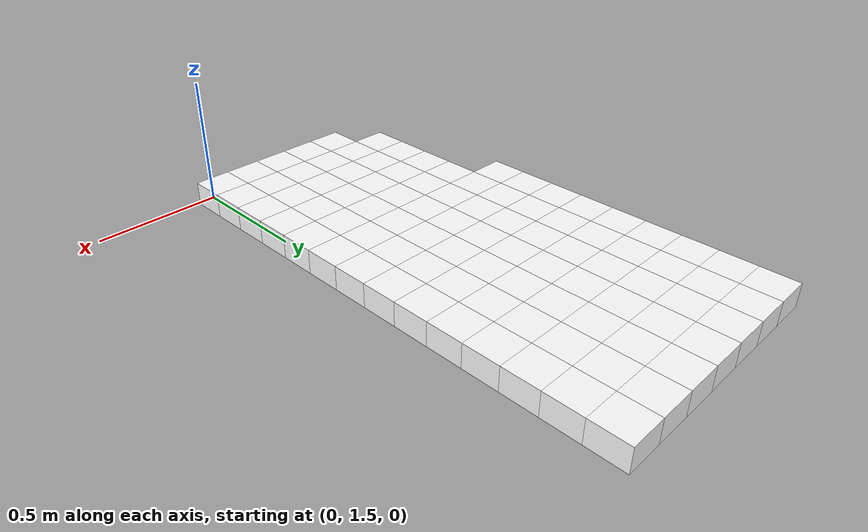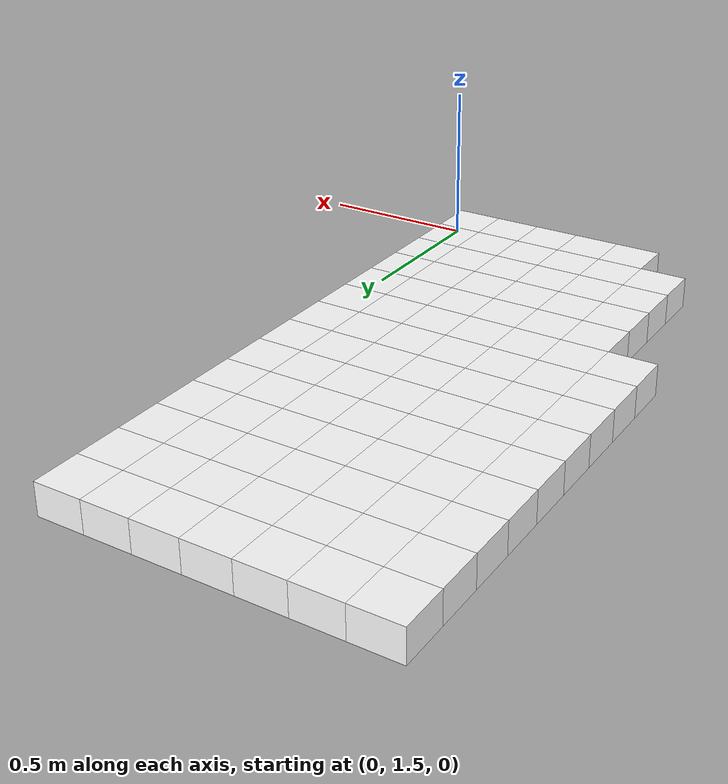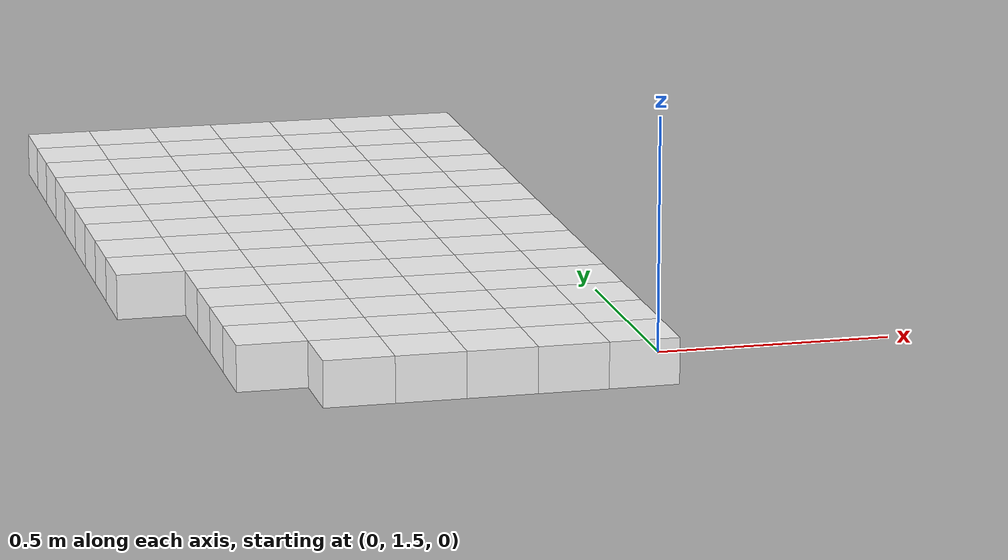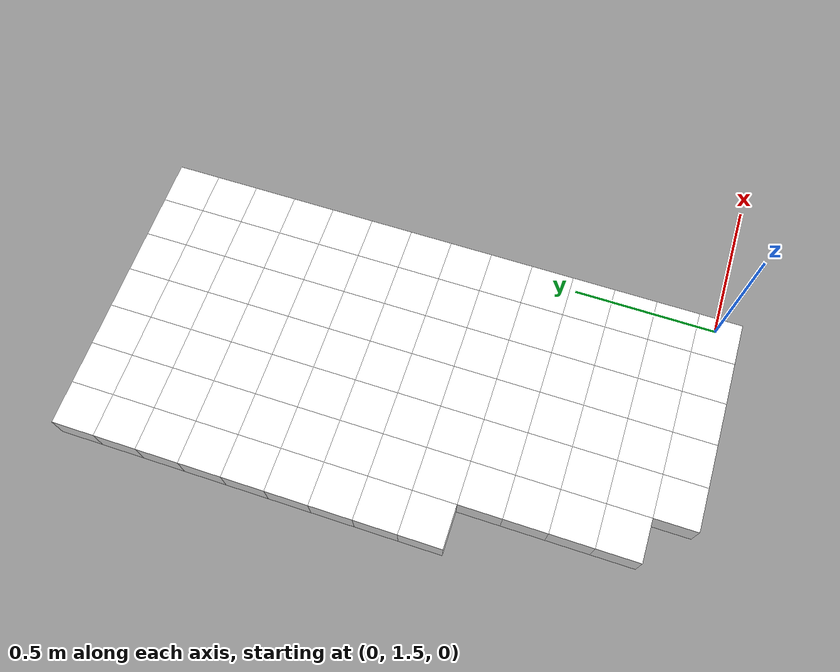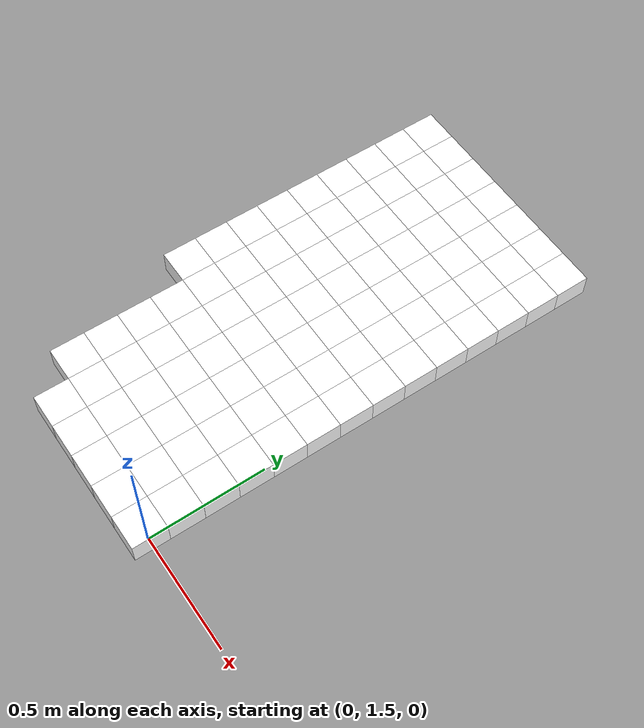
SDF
<sdf version="1.7">
 <world name="default">
  <include><uri>model://sun</uri></include>
  <model name="static_environment">
   <static>true</static>
   <link name="region_129">
    <pose>-0.6500000000000001 1.5 0.0 0.0 0.0 0.0</pose>
    <collision name="region_129_collision">
     <geometry><box><size>0.15 0.15 0.1</size></box></geometry>
     <surface><friction><ode><mu>1.0</mu><mu2>1.0</mu2></ode></friction></surface>
    </collision>
    <visual name="region_129_visual">
     <geometry><box><size>0.15 0.15 0.1</size></box></geometry>
     <material><ambient>1.0 1.0 1.0 1.0</ambient><diffuse>1.0 1.0 1.0 1.0</diffuse></material>
    </visual>
   </link>
   <link name="region_130">
    <pose>-0.5000000000000002 1.5 0.0 0.0 0.0 0.0</pose>
    <collision name="region_130_collision">
     <geometry><box><size>0.15 0.15 0.1</size></box></geometry>
     <surface><friction><ode><mu>1.0</mu><mu2>1.0</mu2></ode></friction></surface>
    </collision>
    <visual name="region_130_visual">
     <geometry><box><size>0.15 0.15 0.1</size></box></geometry>
     <material><ambient>1.0 1.0 1.0 1.0</ambient><diffuse>1.0 1.0 1.0 1.0</diffuse></material>
    </visual>
   </link>
   <link name="region_131">
    <pose>-0.3500000000000003 1.5 0.0 0.0 0.0 0.0</pose>
    <collision name="region_131_collision">
     <geometry><box><size>0.15 0.15 0.1</size></box></geometry>
     <surface><friction><ode><mu>1.0</mu><mu2>1.0</mu2></ode></friction></surface>
    </collision>
    <visual name="region_131_visual">
     <geometry><box><size>0.15 0.15 0.1</size></box></geometry>
     <material><ambient>1.0 1.0 1.0 1.0</ambient><diffuse>1.0 1.0 1.0 1.0</diffuse></material>
    </visual>
   </link>
   <link name="region_132">
    <pose>-0.2000000000000004 1.5 0.0 0.0 0.0 0.0</pose>
    <collision name="region_132_collision">
     <geometry><box><size>0.15 0.15 0.1</size></box></geometry>
     <surface><friction><ode><mu>1.0</mu><mu2>1.0</mu2></ode></friction></surface>
    </collision>
    <visual name="region_132_visual">
     <geometry><box><size>0.15 0.15 0.1</size></box></geometry>
     <material><ambient>1.0 1.0 1.0 1.0</ambient><diffuse>1.0 1.0 1.0 1.0</diffuse></material>
    </visual>
   </link>
   <link name="region_133">
    <pose>-0.05000000000000049 1.5 0.0 0.0 0.0 0.0</pose>
    <collision name="region_133_collision">
     <geometry><box><size>0.15 0.15 0.1</size></box></geometry>
     <surface><friction><ode><mu>1.0</mu><mu2>1.0</mu2></ode></friction></surface>
    </collision>
    <visual name="region_133_visual">
     <geometry><box><size>0.15 0.15 0.1</size></box></geometry>
     <material><ambient>1.0 1.0 1.0 1.0</ambient><diffuse>1.0 1.0 1.0 1.0</diffuse></material>
    </visual>
   </link>
   <link name="region_148">
    <pose>-0.8 1.65 0.0 0.0 0.0 0.0</pose>
    <collision name="region_148_collision">
     <geometry><box><size>0.15 0.15 0.1</size></box></geometry>
     <surface><friction><ode><mu>1.0</mu><mu2>1.0</mu2></ode></friction></surface>
    </collision>
    <visual name="region_148_visual">
     <geometry><box><size>0.15 0.15 0.1</size></box></geometry>
     <material><ambient>1.0 1.0 1.0 1.0</ambient><diffuse>1.0 1.0 1.0 1.0</diffuse></material>
    </visual>
   </link>
   <link name="region_149">
    <pose>-0.6500000000000001 1.65 0.0 0.0 0.0 0.0</pose>
    <collision name="region_149_collision">
     <geometry><box><size>0.15 0.15 0.1</size></box></geometry>
     <surface><friction><ode><mu>1.0</mu><mu2>1.0</mu2></ode></friction></surface>
    </collision>
    <visual name="region_149_visual">
     <geometry><box><size>0.15 0.15 0.1</size></box></geometry>
     <material><ambient>1.0 1.0 1.0 1.0</ambient><diffuse>1.0 1.0 1.0 1.0</diffuse></material>
    </visual>
   </link>
   <link name="region_150">
    <pose>-0.5000000000000002 1.65 0.0 0.0 0.0 0.0</pose>
    <collision name="region_150_collision">
     <geometry><box><size>0.15 0.15 0.1</size></box></geometry>
     <surface><friction><ode><mu>1.0</mu><mu2>1.0</mu2></ode></friction></surface>
    </collision>
    <visual name="region_150_visual">
     <geometry><box><size>0.15 0.15 0.1</size></box></geometry>
     <material><ambient>1.0 1.0 1.0 1.0</ambient><diffuse>1.0 1.0 1.0 1.0</diffuse></material>
    </visual>
   </link>
   <link name="region_151">
    <pose>-0.3500000000000003 1.65 0.0 0.0 0.0 0.0</pose>
    <collision name="region_151_collision">
     <geometry><box><size>0.15 0.15 0.1</size></box></geometry>
     <surface><friction><ode><mu>1.0</mu><mu2>1.0</mu2></ode></friction></surface>
    </collision>
    <visual name="region_151_visual">
     <geometry><box><size>0.15 0.15 0.1</size></box></geometry>
     <material><ambient>1.0 1.0 1.0 1.0</ambient><diffuse>1.0 1.0 1.0 1.0</diffuse></material>
    </visual>
   </link>
   <link name="region_152">
    <pose>-0.2000000000000004 1.65 0.0 0.0 0.0 0.0</pose>
    <collision name="region_152_collision">
     <geometry><box><size>0.15 0.15 0.1</size></box></geometry>
     <surface><friction><ode><mu>1.0</mu><mu2>1.0</mu2></ode></friction></surface>
    </collision>
    <visual name="region_152_visual">
     <geometry><box><size>0.15 0.15 0.1</size></box></geometry>
     <material><ambient>1.0 1.0 1.0 1.0</ambient><diffuse>1.0 1.0 1.0 1.0</diffuse></material>
    </visual>
   </link>
   <link name="region_153">
    <pose>-0.05000000000000049 1.65 0.0 0.0 0.0 0.0</pose>
    <collision name="region_153_collision">
     <geometry><box><size>0.15 0.15 0.1</size></box></geometry>
     <surface><friction><ode><mu>1.0</mu><mu2>1.0</mu2></ode></friction></surface>
    </collision>
    <visual name="region_153_visual">
     <geometry><box><size>0.15 0.15 0.1</size></box></geometry>
     <material><ambient>1.0 1.0 1.0 1.0</ambient><diffuse>1.0 1.0 1.0 1.0</diffuse></material>
    </visual>
   </link>
   <link name="region_168">
    <pose>-0.8 1.7999999999999998 0.0 0.0 0.0 0.0</pose>
    <collision name="region_168_collision">
     <geometry><box><size>0.15 0.15 0.1</size></box></geometry>
     <surface><friction><ode><mu>1.0</mu><mu2>1.0</mu2></ode></friction></surface>
    </collision>
    <visual name="region_168_visual">
     <geometry><box><size>0.15 0.15 0.1</size></box></geometry>
     <material><ambient>1.0 1.0 1.0 1.0</ambient><diffuse>1.0 1.0 1.0 1.0</diffuse></material>
    </visual>
   </link>
   <link name="region_169">
    <pose>-0.6500000000000001 1.7999999999999998 0.0 0.0 0.0 0.0</pose>
    <collision name="region_169_collision">
     <geometry><box><size>0.15 0.15 0.1</size></box></geometry>
     <surface><friction><ode><mu>1.0</mu><mu2>1.0</mu2></ode></friction></surface>
    </collision>
    <visual name="region_169_visual">
     <geometry><box><size>0.15 0.15 0.1</size></box></geometry>
     <material><ambient>1.0 1.0 1.0 1.0</ambient><diffuse>1.0 1.0 1.0 1.0</diffuse></material>
    </visual>
   </link>
   <link name="region_170">
    <pose>-0.5000000000000002 1.7999999999999998 0.0 0.0 0.0 0.0</pose>
    <collision name="region_170_collision">
     <geometry><box><size>0.15 0.15 0.1</size></box></geometry>
     <surface><friction><ode><mu>1.0</mu><mu2>1.0</mu2></ode></friction></surface>
    </collision>
    <visual name="region_170_visual">
     <geometry><box><size>0.15 0.15 0.1</size></box></geometry>
     <material><ambient>1.0 1.0 1.0 1.0</ambient><diffuse>1.0 1.0 1.0 1.0</diffuse></material>
    </visual>
   </link>
   <link name="region_171">
    <pose>-0.3500000000000003 1.7999999999999998 0.0 0.0 0.0 0.0</pose>
    <collision name="region_171_collision">
     <geometry><box><size>0.15 0.15 0.1</size></box></geometry>
     <surface><friction><ode><mu>1.0</mu><mu2>1.0</mu2></ode></friction></surface>
    </collision>
    <visual name="region_171_visual">
     <geometry><box><size>0.15 0.15 0.1</size></box></geometry>
     <material><ambient>1.0 1.0 1.0 1.0</ambient><diffuse>1.0 1.0 1.0 1.0</diffuse></material>
    </visual>
   </link>
   <link name="region_172">
    <pose>-0.2000000000000004 1.7999999999999998 0.0 0.0 0.0 0.0</pose>
    <collision name="region_172_collision">
     <geometry><box><size>0.15 0.15 0.1</size></box></geometry>
     <surface><friction><ode><mu>1.0</mu><mu2>1.0</mu2></ode></friction></surface>
    </collision>
    <visual name="region_172_visual">
     <geometry><box><size>0.15 0.15 0.1</size></box></geometry>
     <material><ambient>1.0 1.0 1.0 1.0</ambient><diffuse>1.0 1.0 1.0 1.0</diffuse></material>
    </visual>
   </link>
   <link name="region_173">
    <pose>-0.05000000000000049 1.7999999999999998 0.0 0.0 0.0 0.0</pose>
    <collision name="region_173_collision">
     <geometry><box><size>0.15 0.15 0.1</size></box></geometry>
     <surface><friction><ode><mu>1.0</mu><mu2>1.0</mu2></ode></friction></surface>
    </collision>
    <visual name="region_173_visual">
     <geometry><box><size>0.15 0.15 0.1</size></box></geometry>
     <material><ambient>1.0 1.0 1.0 1.0</ambient><diffuse>1.0 1.0 1.0 1.0</diffuse></material>
    </visual>
   </link>
   <link name="region_188">
    <pose>-0.8 1.9499999999999997 0.0 0.0 0.0 0.0</pose>
    <collision name="region_188_collision">
     <geometry><box><size>0.15 0.15 0.1</size></box></geometry>
     <surface><friction><ode><mu>1.0</mu><mu2>1.0</mu2></ode></friction></surface>
    </collision>
    <visual name="region_188_visual">
     <geometry><box><size>0.15 0.15 0.1</size></box></geometry>
     <material><ambient>1.0 1.0 1.0 1.0</ambient><diffuse>1.0 1.0 1.0 1.0</diffuse></material>
    </visual>
   </link>
   <link name="region_189">
    <pose>-0.6500000000000001 1.9499999999999997 0.0 0.0 0.0 0.0</pose>
    <collision name="region_189_collision">
     <geometry><box><size>0.15 0.15 0.1</size></box></geometry>
     <surface><friction><ode><mu>1.0</mu><mu2>1.0</mu2></ode></friction></surface>
    </collision>
    <visual name="region_189_visual">
     <geometry><box><size>0.15 0.15 0.1</size></box></geometry>
     <material><ambient>1.0 1.0 1.0 1.0</ambient><diffuse>1.0 1.0 1.0 1.0</diffuse></material>
    </visual>
   </link>
   <link name="region_190">
    <pose>-0.5000000000000002 1.9499999999999997 0.0 0.0 0.0 0.0</pose>
    <collision name="region_190_collision">
     <geometry><box><size>0.15 0.15 0.1</size></box></geometry>
     <surface><friction><ode><mu>1.0</mu><mu2>1.0</mu2></ode></friction></surface>
    </collision>
    <visual name="region_190_visual">
     <geometry><box><size>0.15 0.15 0.1</size></box></geometry>
     <material><ambient>1.0 1.0 1.0 1.0</ambient><diffuse>1.0 1.0 1.0 1.0</diffuse></material>
    </visual>
   </link>
   <link name="region_191">
    <pose>-0.3500000000000003 1.9499999999999997 0.0 0.0 0.0 0.0</pose>
    <collision name="region_191_collision">
     <geometry><box><size>0.15 0.15 0.1</size></box></geometry>
     <surface><friction><ode><mu>1.0</mu><mu2>1.0</mu2></ode></friction></surface>
    </collision>
    <visual name="region_191_visual">
     <geometry><box><size>0.15 0.15 0.1</size></box></geometry>
     <material><ambient>1.0 1.0 1.0 1.0</ambient><diffuse>1.0 1.0 1.0 1.0</diffuse></material>
    </visual>
   </link>
   <link name="region_192">
    <pose>-0.2000000000000004 1.9499999999999997 0.0 0.0 0.0 0.0</pose>
    <collision name="region_192_collision">
     <geometry><box><size>0.15 0.15 0.1</size></box></geometry>
     <surface><friction><ode><mu>1.0</mu><mu2>1.0</mu2></ode></friction></surface>
    </collision>
    <visual name="region_192_visual">
     <geometry><box><size>0.15 0.15 0.1</size></box></geometry>
     <material><ambient>1.0 1.0 1.0 1.0</ambient><diffuse>1.0 1.0 1.0 1.0</diffuse></material>
    </visual>
   </link>
   <link name="region_193">
    <pose>-0.05000000000000049 1.9499999999999997 0.0 0.0 0.0 0.0</pose>
    <collision name="region_193_collision">
     <geometry><box><size>0.15 0.15 0.1</size></box></geometry>
     <surface><friction><ode><mu>1.0</mu><mu2>1.0</mu2></ode></friction></surface>
    </collision>
    <visual name="region_193_visual">
     <geometry><box><size>0.15 0.15 0.1</size></box></geometry>
     <material><ambient>1.0 1.0 1.0 1.0</ambient><diffuse>1.0 1.0 1.0 1.0</diffuse></material>
    </visual>
   </link>
   <link name="region_208">
    <pose>-0.8 2.0999999999999996 0.0 0.0 0.0 0.0</pose>
    <collision name="region_208_collision">
     <geometry><box><size>0.15 0.15 0.1</size></box></geometry>
     <surface><friction><ode><mu>1.0</mu><mu2>1.0</mu2></ode></friction></surface>
    </collision>
    <visual name="region_208_visual">
     <geometry><box><size>0.15 0.15 0.1</size></box></geometry>
     <material><ambient>1.0 1.0 1.0 1.0</ambient><diffuse>1.0 1.0 1.0 1.0</diffuse></material>
    </visual>
   </link>
   <link name="region_209">
    <pose>-0.6500000000000001 2.0999999999999996 0.0 0.0 0.0 0.0</pose>
    <collision name="region_209_collision">
     <geometry><box><size>0.15 0.15 0.1</size></box></geometry>
     <surface><friction><ode><mu>1.0</mu><mu2>1.0</mu2></ode></friction></surface>
    </collision>
    <visual name="region_209_visual">
     <geometry><box><size>0.15 0.15 0.1</size></box></geometry>
     <material><ambient>1.0 1.0 1.0 1.0</ambient><diffuse>1.0 1.0 1.0 1.0</diffuse></material>
    </visual>
   </link>
   <link name="region_210">
    <pose>-0.5000000000000002 2.0999999999999996 0.0 0.0 0.0 0.0</pose>
    <collision name="region_210_collision">
     <geometry><box><size>0.15 0.15 0.1</size></box></geometry>
     <surface><friction><ode><mu>1.0</mu><mu2>1.0</mu2></ode></friction></surface>
    </collision>
    <visual name="region_210_visual">
     <geometry><box><size>0.15 0.15 0.1</size></box></geometry>
     <material><ambient>1.0 1.0 1.0 1.0</ambient><diffuse>1.0 1.0 1.0 1.0</diffuse></material>
    </visual>
   </link>
   <link name="region_211">
    <pose>-0.3500000000000003 2.0999999999999996 0.0 0.0 0.0 0.0</pose>
    <collision name="region_211_collision">
     <geometry><box><size>0.15 0.15 0.1</size></box></geometry>
     <surface><friction><ode><mu>1.0</mu><mu2>1.0</mu2></ode></friction></surface>
    </collision>
    <visual name="region_211_visual">
     <geometry><box><size>0.15 0.15 0.1</size></box></geometry>
     <material><ambient>1.0 1.0 1.0 1.0</ambient><diffuse>1.0 1.0 1.0 1.0</diffuse></material>
    </visual>
   </link>
   <link name="region_212">
    <pose>-0.2000000000000004 2.0999999999999996 0.0 0.0 0.0 0.0</pose>
    <collision name="region_212_collision">
     <geometry><box><size>0.15 0.15 0.1</size></box></geometry>
     <surface><friction><ode><mu>1.0</mu><mu2>1.0</mu2></ode></friction></surface>
    </collision>
    <visual name="region_212_visual">
     <geometry><box><size>0.15 0.15 0.1</size></box></geometry>
     <material><ambient>1.0 1.0 1.0 1.0</ambient><diffuse>1.0 1.0 1.0 1.0</diffuse></material>
    </visual>
   </link>
   <link name="region_213">
    <pose>-0.05000000000000049 2.0999999999999996 0.0 0.0 0.0 0.0</pose>
    <collision name="region_213_collision">
     <geometry><box><size>0.15 0.15 0.1</size></box></geometry>
     <surface><friction><ode><mu>1.0</mu><mu2>1.0</mu2></ode></friction></surface>
    </collision>
    <visual name="region_213_visual">
     <geometry><box><size>0.15 0.15 0.1</size></box></geometry>
     <material><ambient>1.0 1.0 1.0 1.0</ambient><diffuse>1.0 1.0 1.0 1.0</diffuse></material>
    </visual>
   </link>
   <link name="region_227">
    <pose>-0.95 2.2499999999999996 0.0 0.0 0.0 0.0</pose>
    <collision name="region_227_collision">
     <geometry><box><size>0.15 0.15 0.1</size></box></geometry>
     <surface><friction><ode><mu>1.0</mu><mu2>1.0</mu2></ode></friction></surface>
    </collision>
    <visual name="region_227_visual">
     <geometry><box><size>0.15 0.15 0.1</size></box></geometry>
     <material><ambient>1.0 1.0 1.0 1.0</ambient><diffuse>1.0 1.0 1.0 1.0</diffuse></material>
    </visual>
   </link>
   <link name="region_228">
    <pose>-0.8 2.2499999999999996 0.0 0.0 0.0 0.0</pose>
    <collision name="region_228_collision">
     <geometry><box><size>0.15 0.15 0.1</size></box></geometry>
     <surface><friction><ode><mu>1.0</mu><mu2>1.0</mu2></ode></friction></surface>
    </collision>
    <visual name="region_228_visual">
     <geometry><box><size>0.15 0.15 0.1</size></box></geometry>
     <material><ambient>1.0 1.0 1.0 1.0</ambient><diffuse>1.0 1.0 1.0 1.0</diffuse></material>
    </visual>
   </link>
   <link name="region_229">
    <pose>-0.6500000000000001 2.2499999999999996 0.0 0.0 0.0 0.0</pose>
    <collision name="region_229_collision">
     <geometry><box><size>0.15 0.15 0.1</size></box></geometry>
     <surface><friction><ode><mu>1.0</mu><mu2>1.0</mu2></ode></friction></surface>
    </collision>
    <visual name="region_229_visual">
     <geometry><box><size>0.15 0.15 0.1</size></box></geometry>
     <material><ambient>1.0 1.0 1.0 1.0</ambient><diffuse>1.0 1.0 1.0 1.0</diffuse></material>
    </visual>
   </link>
   <link name="region_230">
    <pose>-0.5000000000000002 2.2499999999999996 0.0 0.0 0.0 0.0</pose>
    <collision name="region_230_collision">
     <geometry><box><size>0.15 0.15 0.1</size></box></geometry>
     <surface><friction><ode><mu>1.0</mu><mu2>1.0</mu2></ode></friction></surface>
    </collision>
    <visual name="region_230_visual">
     <geometry><box><size>0.15 0.15 0.1</size></box></geometry>
     <material><ambient>1.0 1.0 1.0 1.0</ambient><diffuse>1.0 1.0 1.0 1.0</diffuse></material>
    </visual>
   </link>
   <link name="region_231">
    <pose>-0.3500000000000003 2.2499999999999996 0.0 0.0 0.0 0.0</pose>
    <collision name="region_231_collision">
     <geometry><box><size>0.15 0.15 0.1</size></box></geometry>
     <surface><friction><ode><mu>1.0</mu><mu2>1.0</mu2></ode></friction></surface>
    </collision>
    <visual name="region_231_visual">
     <geometry><box><size>0.15 0.15 0.1</size></box></geometry>
     <material><ambient>1.0 1.0 1.0 1.0</ambient><diffuse>1.0 1.0 1.0 1.0</diffuse></material>
    </visual>
   </link>
   <link name="region_232">
    <pose>-0.2000000000000004 2.2499999999999996 0.0 0.0 0.0 0.0</pose>
    <collision name="region_232_collision">
     <geometry><box><size>0.15 0.15 0.1</size></box></geometry>
     <surface><friction><ode><mu>1.0</mu><mu2>1.0</mu2></ode></friction></surface>
    </collision>
    <visual name="region_232_visual">
     <geometry><box><size>0.15 0.15 0.1</size></box></geometry>
     <material><ambient>1.0 1.0 1.0 1.0</ambient><diffuse>1.0 1.0 1.0 1.0</diffuse></material>
    </visual>
   </link>
   <link name="region_233">
    <pose>-0.05000000000000049 2.2499999999999996 0.0 0.0 0.0 0.0</pose>
    <collision name="region_233_collision">
     <geometry><box><size>0.15 0.15 0.1</size></box></geometry>
     <surface><friction><ode><mu>1.0</mu><mu2>1.0</mu2></ode></friction></surface>
    </collision>
    <visual name="region_233_visual">
     <geometry><box><size>0.15 0.15 0.1</size></box></geometry>
     <material><ambient>1.0 1.0 1.0 1.0</ambient><diffuse>1.0 1.0 1.0 1.0</diffuse></material>
    </visual>
   </link>
   <link name="region_247">
    <pose>-0.95 2.3999999999999995 0.0 0.0 0.0 0.0</pose>
    <collision name="region_247_collision">
     <geometry><box><size>0.15 0.15 0.1</size></box></geometry>
     <surface><friction><ode><mu>1.0</mu><mu2>1.0</mu2></ode></friction></surface>
    </collision>
    <visual name="region_247_visual">
     <geometry><box><size>0.15 0.15 0.1</size></box></geometry>
     <material><ambient>1.0 1.0 1.0 1.0</ambient><diffuse>1.0 1.0 1.0 1.0</diffuse></material>
    </visual>
   </link>
   <link name="region_248">
    <pose>-0.8 2.3999999999999995 0.0 0.0 0.0 0.0</pose>
    <collision name="region_248_collision">
     <geometry><box><size>0.15 0.15 0.1</size></box></geometry>
     <surface><friction><ode><mu>1.0</mu><mu2>1.0</mu2></ode></friction></surface>
    </collision>
    <visual name="region_248_visual">
     <geometry><box><size>0.15 0.15 0.1</size></box></geometry>
     <material><ambient>1.0 1.0 1.0 1.0</ambient><diffuse>1.0 1.0 1.0 1.0</diffuse></material>
    </visual>
   </link>
   <link name="region_249">
    <pose>-0.6500000000000001 2.3999999999999995 0.0 0.0 0.0 0.0</pose>
    <collision name="region_249_collision">
     <geometry><box><size>0.15 0.15 0.1</size></box></geometry>
     <surface><friction><ode><mu>1.0</mu><mu2>1.0</mu2></ode></friction></surface>
    </collision>
    <visual name="region_249_visual">
     <geometry><box><size>0.15 0.15 0.1</size></box></geometry>
     <material><ambient>1.0 1.0 1.0 1.0</ambient><diffuse>1.0 1.0 1.0 1.0</diffuse></material>
    </visual>
   </link>
   <link name="region_250">
    <pose>-0.5000000000000002 2.3999999999999995 0.0 0.0 0.0 0.0</pose>
    <collision name="region_250_collision">
     <geometry><box><size>0.15 0.15 0.1</size></box></geometry>
     <surface><friction><ode><mu>1.0</mu><mu2>1.0</mu2></ode></friction></surface>
    </collision>
    <visual name="region_250_visual">
     <geometry><box><size>0.15 0.15 0.1</size></box></geometry>
     <material><ambient>1.0 1.0 1.0 1.0</ambient><diffuse>1.0 1.0 1.0 1.0</diffuse></material>
    </visual>
   </link>
   <link name="region_251">
    <pose>-0.3500000000000003 2.3999999999999995 0.0 0.0 0.0 0.0</pose>
    <collision name="region_251_collision">
     <geometry><box><size>0.15 0.15 0.1</size></box></geometry>
     <surface><friction><ode><mu>1.0</mu><mu2>1.0</mu2></ode></friction></surface>
    </collision>
    <visual name="region_251_visual">
     <geometry><box><size>0.15 0.15 0.1</size></box></geometry>
     <material><ambient>1.0 1.0 1.0 1.0</ambient><diffuse>1.0 1.0 1.0 1.0</diffuse></material>
    </visual>
   </link>
   <link name="region_252">
    <pose>-0.2000000000000004 2.3999999999999995 0.0 0.0 0.0 0.0</pose>
    <collision name="region_252_collision">
     <geometry><box><size>0.15 0.15 0.1</size></box></geometry>
     <surface><friction><ode><mu>1.0</mu><mu2>1.0</mu2></ode></friction></surface>
    </collision>
    <visual name="region_252_visual">
     <geometry><box><size>0.15 0.15 0.1</size></box></geometry>
     <material><ambient>1.0 1.0 1.0 1.0</ambient><diffuse>1.0 1.0 1.0 1.0</diffuse></material>
    </visual>
   </link>
   <link name="region_253">
    <pose>-0.05000000000000049 2.3999999999999995 0.0 0.0 0.0 0.0</pose>
    <collision name="region_253_collision">
     <geometry><box><size>0.15 0.15 0.1</size></box></geometry>
     <surface><friction><ode><mu>1.0</mu><mu2>1.0</mu2></ode></friction></surface>
    </collision>
    <visual name="region_253_visual">
     <geometry><box><size>0.15 0.15 0.1</size></box></geometry>
     <material><ambient>1.0 1.0 1.0 1.0</ambient><diffuse>1.0 1.0 1.0 1.0</diffuse></material>
    </visual>
   </link>
   <link name="region_267">
    <pose>-0.95 2.5499999999999994 0.0 0.0 0.0 0.0</pose>
    <collision name="region_267_collision">
     <geometry><box><size>0.15 0.15 0.1</size></box></geometry>
     <surface><friction><ode><mu>1.0</mu><mu2>1.0</mu2></ode></friction></surface>
    </collision>
    <visual name="region_267_visual">
     <geometry><box><size>0.15 0.15 0.1</size></box></geometry>
     <material><ambient>1.0 1.0 1.0 1.0</ambient><diffuse>1.0 1.0 1.0 1.0</diffuse></material>
    </visual>
   </link>
   <link name="region_268">
    <pose>-0.8 2.5499999999999994 0.0 0.0 0.0 0.0</pose>
    <collision name="region_268_collision">
     <geometry><box><size>0.15 0.15 0.1</size></box></geometry>
     <surface><friction><ode><mu>1.0</mu><mu2>1.0</mu2></ode></friction></surface>
    </collision>
    <visual name="region_268_visual">
     <geometry><box><size>0.15 0.15 0.1</size></box></geometry>
     <material><ambient>1.0 1.0 1.0 1.0</ambient><diffuse>1.0 1.0 1.0 1.0</diffuse></material>
    </visual>
   </link>
   <link name="region_269">
    <pose>-0.6500000000000001 2.5499999999999994 0.0 0.0 0.0 0.0</pose>
    <collision name="region_269_collision">
     <geometry><box><size>0.15 0.15 0.1</size></box></geometry>
     <surface><friction><ode><mu>1.0</mu><mu2>1.0</mu2></ode></friction></surface>
    </collision>
    <visual name="region_269_visual">
     <geometry><box><size>0.15 0.15 0.1</size></box></geometry>
     <material><ambient>1.0 1.0 1.0 1.0</ambient><diffuse>1.0 1.0 1.0 1.0</diffuse></material>
    </visual>
   </link>
   <link name="region_270">
    <pose>-0.5000000000000002 2.5499999999999994 0.0 0.0 0.0 0.0</pose>
    <collision name="region_270_collision">
     <geometry><box><size>0.15 0.15 0.1</size></box></geometry>
     <surface><friction><ode><mu>1.0</mu><mu2>1.0</mu2></ode></friction></surface>
    </collision>
    <visual name="region_270_visual">
     <geometry><box><size>0.15 0.15 0.1</size></box></geometry>
     <material><ambient>1.0 1.0 1.0 1.0</ambient><diffuse>1.0 1.0 1.0 1.0</diffuse></material>
    </visual>
   </link>
   <link name="region_271">
    <pose>-0.3500000000000003 2.5499999999999994 0.0 0.0 0.0 0.0</pose>
    <collision name="region_271_collision">
     <geometry><box><size>0.15 0.15 0.1</size></box></geometry>
     <surface><friction><ode><mu>1.0</mu><mu2>1.0</mu2></ode></friction></surface>
    </collision>
    <visual name="region_271_visual">
     <geometry><box><size>0.15 0.15 0.1</size></box></geometry>
     <material><ambient>1.0 1.0 1.0 1.0</ambient><diffuse>1.0 1.0 1.0 1.0</diffuse></material>
    </visual>
   </link>
   <link name="region_272">
    <pose>-0.2000000000000004 2.5499999999999994 0.0 0.0 0.0 0.0</pose>
    <collision name="region_272_collision">
     <geometry><box><size>0.15 0.15 0.1</size></box></geometry>
     <surface><friction><ode><mu>1.0</mu><mu2>1.0</mu2></ode></friction></surface>
    </collision>
    <visual name="region_272_visual">
     <geometry><box><size>0.15 0.15 0.1</size></box></geometry>
     <material><ambient>1.0 1.0 1.0 1.0</ambient><diffuse>1.0 1.0 1.0 1.0</diffuse></material>
    </visual>
   </link>
   <link name="region_273">
    <pose>-0.05000000000000049 2.5499999999999994 0.0 0.0 0.0 0.0</pose>
    <collision name="region_273_collision">
     <geometry><box><size>0.15 0.15 0.1</size></box></geometry>
     <surface><friction><ode><mu>1.0</mu><mu2>1.0</mu2></ode></friction></surface>
    </collision>
    <visual name="region_273_visual">
     <geometry><box><size>0.15 0.15 0.1</size></box></geometry>
     <material><ambient>1.0 1.0 1.0 1.0</ambient><diffuse>1.0 1.0 1.0 1.0</diffuse></material>
    </visual>
   </link>
   <link name="region_287">
    <pose>-0.95 2.6999999999999997 0.0 0.0 0.0 0.0</pose>
    <collision name="region_287_collision">
     <geometry><box><size>0.15 0.15 0.1</size></box></geometry>
     <surface><friction><ode><mu>1.0</mu><mu2>1.0</mu2></ode></friction></surface>
    </collision>
    <visual name="region_287_visual">
     <geometry><box><size>0.15 0.15 0.1</size></box></geometry>
     <material><ambient>1.0 1.0 1.0 1.0</ambient><diffuse>1.0 1.0 1.0 1.0</diffuse></material>
    </visual>
   </link>
   <link name="region_288">
    <pose>-0.8 2.6999999999999997 0.0 0.0 0.0 0.0</pose>
    <collision name="region_288_collision">
     <geometry><box><size>0.15 0.15 0.1</size></box></geometry>
     <surface><friction><ode><mu>1.0</mu><mu2>1.0</mu2></ode></friction></surface>
    </collision>
    <visual name="region_288_visual">
     <geometry><box><size>0.15 0.15 0.1</size></box></geometry>
     <material><ambient>1.0 1.0 1.0 1.0</ambient><diffuse>1.0 1.0 1.0 1.0</diffuse></material>
    </visual>
   </link>
   <link name="region_289">
    <pose>-0.6500000000000001 2.6999999999999997 0.0 0.0 0.0 0.0</pose>
    <collision name="region_289_collision">
     <geometry><box><size>0.15 0.15 0.1</size></box></geometry>
     <surface><friction><ode><mu>1.0</mu><mu2>1.0</mu2></ode></friction></surface>
    </collision>
    <visual name="region_289_visual">
     <geometry><box><size>0.15 0.15 0.1</size></box></geometry>
     <material><ambient>1.0 1.0 1.0 1.0</ambient><diffuse>1.0 1.0 1.0 1.0</diffuse></material>
    </visual>
   </link>
   <link name="region_290">
    <pose>-0.5000000000000002 2.6999999999999997 0.0 0.0 0.0 0.0</pose>
    <collision name="region_290_collision">
     <geometry><box><size>0.15 0.15 0.1</size></box></geometry>
     <surface><friction><ode><mu>1.0</mu><mu2>1.0</mu2></ode></friction></surface>
    </collision>
    <visual name="region_290_visual">
     <geometry><box><size>0.15 0.15 0.1</size></box></geometry>
     <material><ambient>1.0 1.0 1.0 1.0</ambient><diffuse>1.0 1.0 1.0 1.0</diffuse></material>
    </visual>
   </link>
   <link name="region_291">
    <pose>-0.3500000000000003 2.6999999999999997 0.0 0.0 0.0 0.0</pose>
    <collision name="region_291_collision">
     <geometry><box><size>0.15 0.15 0.1</size></box></geometry>
     <surface><friction><ode><mu>1.0</mu><mu2>1.0</mu2></ode></friction></surface>
    </collision>
    <visual name="region_291_visual">
     <geometry><box><size>0.15 0.15 0.1</size></box></geometry>
     <material><ambient>1.0 1.0 1.0 1.0</ambient><diffuse>1.0 1.0 1.0 1.0</diffuse></material>
    </visual>
   </link>
   <link name="region_292">
    <pose>-0.2000000000000004 2.6999999999999997 0.0 0.0 0.0 0.0</pose>
    <collision name="region_292_collision">
     <geometry><box><size>0.15 0.15 0.1</size></box></geometry>
     <surface><friction><ode><mu>1.0</mu><mu2>1.0</mu2></ode></friction></surface>
    </collision>
    <visual name="region_292_visual">
     <geometry><box><size>0.15 0.15 0.1</size></box></geometry>
     <material><ambient>1.0 1.0 1.0 1.0</ambient><diffuse>1.0 1.0 1.0 1.0</diffuse></material>
    </visual>
   </link>
   <link name="region_293">
    <pose>-0.05000000000000049 2.6999999999999997 0.0 0.0 0.0 0.0</pose>
    <collision name="region_293_collision">
     <geometry><box><size>0.15 0.15 0.1</size></box></geometry>
     <surface><friction><ode><mu>1.0</mu><mu2>1.0</mu2></ode></friction></surface>
    </collision>
    <visual name="region_293_visual">
     <geometry><box><size>0.15 0.15 0.1</size></box></geometry>
     <material><ambient>1.0 1.0 1.0 1.0</ambient><diffuse>1.0 1.0 1.0 1.0</diffuse></material>
    </visual>
   </link>
   <link name="region_307">
    <pose>-0.95 2.8499999999999996 0.0 0.0 0.0 0.0</pose>
    <collision name="region_307_collision">
     <geometry><box><size>0.15 0.15 0.1</size></box></geometry>
     <surface><friction><ode><mu>1.0</mu><mu2>1.0</mu2></ode></friction></surface>
    </collision>
    <visual name="region_307_visual">
     <geometry><box><size>0.15 0.15 0.1</size></box></geometry>
     <material><ambient>1.0 1.0 1.0 1.0</ambient><diffuse>1.0 1.0 1.0 1.0</diffuse></material>
    </visual>
   </link>
   <link name="region_308">
    <pose>-0.8 2.8499999999999996 0.0 0.0 0.0 0.0</pose>
    <collision name="region_308_collision">
     <geometry><box><size>0.15 0.15 0.1</size></box></geometry>
     <surface><friction><ode><mu>1.0</mu><mu2>1.0</mu2></ode></friction></surface>
    </collision>
    <visual name="region_308_visual">
     <geometry><box><size>0.15 0.15 0.1</size></box></geometry>
     <material><ambient>1.0 1.0 1.0 1.0</ambient><diffuse>1.0 1.0 1.0 1.0</diffuse></material>
    </visual>
   </link>
   <link name="region_309">
    <pose>-0.6500000000000001 2.8499999999999996 0.0 0.0 0.0 0.0</pose>
    <collision name="region_309_collision">
     <geometry><box><size>0.15 0.15 0.1</size></box></geometry>
     <surface><friction><ode><mu>1.0</mu><mu2>1.0</mu2></ode></friction></surface>
    </collision>
    <visual name="region_309_visual">
     <geometry><box><size>0.15 0.15 0.1</size></box></geometry>
     <material><ambient>1.0 1.0 1.0 1.0</ambient><diffuse>1.0 1.0 1.0 1.0</diffuse></material>
    </visual>
   </link>
   <link name="region_310">
    <pose>-0.5000000000000002 2.8499999999999996 0.0 0.0 0.0 0.0</pose>
    <collision name="region_310_collision">
     <geometry><box><size>0.15 0.15 0.1</size></box></geometry>
     <surface><friction><ode><mu>1.0</mu><mu2>1.0</mu2></ode></friction></surface>
    </collision>
    <visual name="region_310_visual">
     <geometry><box><size>0.15 0.15 0.1</size></box></geometry>
     <material><ambient>1.0 1.0 1.0 1.0</ambient><diffuse>1.0 1.0 1.0 1.0</diffuse></material>
    </visual>
   </link>
   <link name="region_311">
    <pose>-0.3500000000000003 2.8499999999999996 0.0 0.0 0.0 0.0</pose>
    <collision name="region_311_collision">
     <geometry><box><size>0.15 0.15 0.1</size></box></geometry>
     <surface><friction><ode><mu>1.0</mu><mu2>1.0</mu2></ode></friction></surface>
    </collision>
    <visual name="region_311_visual">
     <geometry><box><size>0.15 0.15 0.1</size></box></geometry>
     <material><ambient>1.0 1.0 1.0 1.0</ambient><diffuse>1.0 1.0 1.0 1.0</diffuse></material>
    </visual>
   </link>
   <link name="region_312">
    <pose>-0.2000000000000004 2.8499999999999996 0.0 0.0 0.0 0.0</pose>
    <collision name="region_312_collision">
     <geometry><box><size>0.15 0.15 0.1</size></box></geometry>
     <surface><friction><ode><mu>1.0</mu><mu2>1.0</mu2></ode></friction></surface>
    </collision>
    <visual name="region_312_visual">
     <geometry><box><size>0.15 0.15 0.1</size></box></geometry>
     <material><ambient>1.0 1.0 1.0 1.0</ambient><diffuse>1.0 1.0 1.0 1.0</diffuse></material>
    </visual>
   </link>
   <link name="region_313">
    <pose>-0.05000000000000049 2.8499999999999996 0.0 0.0 0.0 0.0</pose>
    <collision name="region_313_collision">
     <geometry><box><size>0.15 0.15 0.1</size></box></geometry>
     <surface><friction><ode><mu>1.0</mu><mu2>1.0</mu2></ode></friction></surface>
    </collision>
    <visual name="region_313_visual">
     <geometry><box><size>0.15 0.15 0.1</size></box></geometry>
     <material><ambient>1.0 1.0 1.0 1.0</ambient><diffuse>1.0 1.0 1.0 1.0</diffuse></material>
    </visual>
   </link>
   <link name="region_327">
    <pose>-0.95 2.9999999999999996 0.0 0.0 0.0 0.0</pose>
    <collision name="region_327_collision">
     <geometry><box><size>0.15 0.15 0.1</size></box></geometry>
     <surface><friction><ode><mu>1.0</mu><mu2>1.0</mu2></ode></friction></surface>
    </collision>
    <visual name="region_327_visual">
     <geometry><box><size>0.15 0.15 0.1</size></box></geometry>
     <material><ambient>1.0 1.0 1.0 1.0</ambient><diffuse>1.0 1.0 1.0 1.0</diffuse></material>
    </visual>
   </link>
   <link name="region_328">
    <pose>-0.8 2.9999999999999996 0.0 0.0 0.0 0.0</pose>
    <collision name="region_328_collision">
     <geometry><box><size>0.15 0.15 0.1</size></box></geometry>
     <surface><friction><ode><mu>1.0</mu><mu2>1.0</mu2></ode></friction></surface>
    </collision>
    <visual name="region_328_visual">
     <geometry><box><size>0.15 0.15 0.1</size></box></geometry>
     <material><ambient>1.0 1.0 1.0 1.0</ambient><diffuse>1.0 1.0 1.0 1.0</diffuse></material>
    </visual>
   </link>
   <link name="region_329">
    <pose>-0.6500000000000001 2.9999999999999996 0.0 0.0 0.0 0.0</pose>
    <collision name="region_329_collision">
     <geometry><box><size>0.15 0.15 0.1</size></box></geometry>
     <surface><friction><ode><mu>1.0</mu><mu2>1.0</mu2></ode></friction></surface>
    </collision>
    <visual name="region_329_visual">
     <geometry><box><size>0.15 0.15 0.1</size></box></geometry>
     <material><ambient>1.0 1.0 1.0 1.0</ambient><diffuse>1.0 1.0 1.0 1.0</diffuse></material>
    </visual>
   </link>
   <link name="region_330">
    <pose>-0.5000000000000002 2.9999999999999996 0.0 0.0 0.0 0.0</pose>
    <collision name="region_330_collision">
     <geometry><box><size>0.15 0.15 0.1</size></box></geometry>
     <surface><friction><ode><mu>1.0</mu><mu2>1.0</mu2></ode></friction></surface>
    </collision>
    <visual name="region_330_visual">
     <geometry><box><size>0.15 0.15 0.1</size></box></geometry>
     <material><ambient>1.0 1.0 1.0 1.0</ambient><diffuse>1.0 1.0 1.0 1.0</diffuse></material>
    </visual>
   </link>
   <link name="region_331">
    <pose>-0.3500000000000003 2.9999999999999996 0.0 0.0 0.0 0.0</pose>
    <collision name="region_331_collision">
     <geometry><box><size>0.15 0.15 0.1</size></box></geometry>
     <surface><friction><ode><mu>1.0</mu><mu2>1.0</mu2></ode></friction></surface>
    </collision>
    <visual name="region_331_visual">
     <geometry><box><size>0.15 0.15 0.1</size></box></geometry>
     <material><ambient>1.0 1.0 1.0 1.0</ambient><diffuse>1.0 1.0 1.0 1.0</diffuse></material>
    </visual>
   </link>
   <link name="region_332">
    <pose>-0.2000000000000004 2.9999999999999996 0.0 0.0 0.0 0.0</pose>
    <collision name="region_332_collision">
     <geometry><box><size>0.15 0.15 0.1</size></box></geometry>
     <surface><friction><ode><mu>1.0</mu><mu2>1.0</mu2></ode></friction></surface>
    </collision>
    <visual name="region_332_visual">
     <geometry><box><size>0.15 0.15 0.1</size></box></geometry>
     <material><ambient>1.0 1.0 1.0 1.0</ambient><diffuse>1.0 1.0 1.0 1.0</diffuse></material>
    </visual>
   </link>
   <link name="region_333">
    <pose>-0.05000000000000049 2.9999999999999996 0.0 0.0 0.0 0.0</pose>
    <collision name="region_333_collision">
     <geometry><box><size>0.15 0.15 0.1</size></box></geometry>
     <surface><friction><ode><mu>1.0</mu><mu2>1.0</mu2></ode></friction></surface>
    </collision>
    <visual name="region_333_visual">
     <geometry><box><size>0.15 0.15 0.1</size></box></geometry>
     <material><ambient>1.0 1.0 1.0 1.0</ambient><diffuse>1.0 1.0 1.0 1.0</diffuse></material>
    </visual>
   </link>
   <link name="region_347">
    <pose>-0.95 3.1499999999999995 0.0 0.0 0.0 0.0</pose>
    <collision name="region_347_collision">
     <geometry><box><size>0.15 0.15 0.1</size></box></geometry>
     <surface><friction><ode><mu>1.0</mu><mu2>1.0</mu2></ode></friction></surface>
    </collision>
    <visual name="region_347_visual">
     <geometry><box><size>0.15 0.15 0.1</size></box></geometry>
     <material><ambient>1.0 1.0 1.0 1.0</ambient><diffuse>1.0 1.0 1.0 1.0</diffuse></material>
    </visual>
   </link>
   <link name="region_348">
    <pose>-0.8 3.1499999999999995 0.0 0.0 0.0 0.0</pose>
    <collision name="region_348_collision">
     <geometry><box><size>0.15 0.15 0.1</size></box></geometry>
     <surface><friction><ode><mu>1.0</mu><mu2>1.0</mu2></ode></friction></surface>
    </collision>
    <visual name="region_348_visual">
     <geometry><box><size>0.15 0.15 0.1</size></box></geometry>
     <material><ambient>1.0 1.0 1.0 1.0</ambient><diffuse>1.0 1.0 1.0 1.0</diffuse></material>
    </visual>
   </link>
   <link name="region_349">
    <pose>-0.6500000000000001 3.1499999999999995 0.0 0.0 0.0 0.0</pose>
    <collision name="region_349_collision">
     <geometry><box><size>0.15 0.15 0.1</size></box></geometry>
     <surface><friction><ode><mu>1.0</mu><mu2>1.0</mu2></ode></friction></surface>
    </collision>
    <visual name="region_349_visual">
     <geometry><box><size>0.15 0.15 0.1</size></box></geometry>
     <material><ambient>1.0 1.0 1.0 1.0</ambient><diffuse>1.0 1.0 1.0 1.0</diffuse></material>
    </visual>
   </link>
   <link name="region_350">
    <pose>-0.5000000000000002 3.1499999999999995 0.0 0.0 0.0 0.0</pose>
    <collision name="region_350_collision">
     <geometry><box><size>0.15 0.15 0.1</size></box></geometry>
     <surface><friction><ode><mu>1.0</mu><mu2>1.0</mu2></ode></friction></surface>
    </collision>
    <visual name="region_350_visual">
     <geometry><box><size>0.15 0.15 0.1</size></box></geometry>
     <material><ambient>1.0 1.0 1.0 1.0</ambient><diffuse>1.0 1.0 1.0 1.0</diffuse></material>
    </visual>
   </link>
   <link name="region_351">
    <pose>-0.3500000000000003 3.1499999999999995 0.0 0.0 0.0 0.0</pose>
    <collision name="region_351_collision">
     <geometry><box><size>0.15 0.15 0.1</size></box></geometry>
     <surface><friction><ode><mu>1.0</mu><mu2>1.0</mu2></ode></friction></surface>
    </collision>
    <visual name="region_351_visual">
     <geometry><box><size>0.15 0.15 0.1</size></box></geometry>
     <material><ambient>1.0 1.0 1.0 1.0</ambient><diffuse>1.0 1.0 1.0 1.0</diffuse></material>
    </visual>
   </link>
   <link name="region_352">
    <pose>-0.2000000000000004 3.1499999999999995 0.0 0.0 0.0 0.0</pose>
    <collision name="region_352_collision">
     <geometry><box><size>0.15 0.15 0.1</size></box></geometry>
     <surface><friction><ode><mu>1.0</mu><mu2>1.0</mu2></ode></friction></surface>
    </collision>
    <visual name="region_352_visual">
     <geometry><box><size>0.15 0.15 0.1</size></box></geometry>
     <material><ambient>1.0 1.0 1.0 1.0</ambient><diffuse>1.0 1.0 1.0 1.0</diffuse></material>
    </visual>
   </link>
   <link name="region_353">
    <pose>-0.05000000000000049 3.1499999999999995 0.0 0.0 0.0 0.0</pose>
    <collision name="region_353_collision">
     <geometry><box><size>0.15 0.15 0.1</size></box></geometry>
     <surface><friction><ode><mu>1.0</mu><mu2>1.0</mu2></ode></friction></surface>
    </collision>
    <visual name="region_353_visual">
     <geometry><box><size>0.15 0.15 0.1</size></box></geometry>
     <material><ambient>1.0 1.0 1.0 1.0</ambient><diffuse>1.0 1.0 1.0 1.0</diffuse></material>
    </visual>
   </link>
   <link name="region_367">
    <pose>-0.95 3.2999999999999994 0.0 0.0 0.0 0.0</pose>
    <collision name="region_367_collision">
     <geometry><box><size>0.15 0.15 0.1</size></box></geometry>
     <surface><friction><ode><mu>1.0</mu><mu2>1.0</mu2></ode></friction></surface>
    </collision>
    <visual name="region_367_visual">
     <geometry><box><size>0.15 0.15 0.1</size></box></geometry>
     <material><ambient>1.0 1.0 1.0 1.0</ambient><diffuse>1.0 1.0 1.0 1.0</diffuse></material>
    </visual>
   </link>
   <link name="region_368">
    <pose>-0.8 3.2999999999999994 0.0 0.0 0.0 0.0</pose>
    <collision name="region_368_collision">
     <geometry><box><size>0.15 0.15 0.1</size></box></geometry>
     <surface><friction><ode><mu>1.0</mu><mu2>1.0</mu2></ode></friction></surface>
    </collision>
    <visual name="region_368_visual">
     <geometry><box><size>0.15 0.15 0.1</size></box></geometry>
     <material><ambient>1.0 1.0 1.0 1.0</ambient><diffuse>1.0 1.0 1.0 1.0</diffuse></material>
    </visual>
   </link>
   <link name="region_369">
    <pose>-0.6500000000000001 3.2999999999999994 0.0 0.0 0.0 0.0</pose>
    <collision name="region_369_collision">
     <geometry><box><size>0.15 0.15 0.1</size></box></geometry>
     <surface><friction><ode><mu>1.0</mu><mu2>1.0</mu2></ode></friction></surface>
    </collision>
    <visual name="region_369_visual">
     <geometry><box><size>0.15 0.15 0.1</size></box></geometry>
     <material><ambient>1.0 1.0 1.0 1.0</ambient><diffuse>1.0 1.0 1.0 1.0</diffuse></material>
    </visual>
   </link>
   <link name="region_370">
    <pose>-0.5000000000000002 3.2999999999999994 0.0 0.0 0.0 0.0</pose>
    <collision name="region_370_collision">
     <geometry><box><size>0.15 0.15 0.1</size></box></geometry>
     <surface><friction><ode><mu>1.0</mu><mu2>1.0</mu2></ode></friction></surface>
    </collision>
    <visual name="region_370_visual">
     <geometry><box><size>0.15 0.15 0.1</size></box></geometry>
     <material><ambient>1.0 1.0 1.0 1.0</ambient><diffuse>1.0 1.0 1.0 1.0</diffuse></material>
    </visual>
   </link>
   <link name="region_371">
    <pose>-0.3500000000000003 3.2999999999999994 0.0 0.0 0.0 0.0</pose>
    <collision name="region_371_collision">
     <geometry><box><size>0.15 0.15 0.1</size></box></geometry>
     <surface><friction><ode><mu>1.0</mu><mu2>1.0</mu2></ode></friction></surface>
    </collision>
    <visual name="region_371_visual">
     <geometry><box><size>0.15 0.15 0.1</size></box></geometry>
     <material><ambient>1.0 1.0 1.0 1.0</ambient><diffuse>1.0 1.0 1.0 1.0</diffuse></material>
    </visual>
   </link>
   <link name="region_372">
    <pose>-0.2000000000000004 3.2999999999999994 0.0 0.0 0.0 0.0</pose>
    <collision name="region_372_collision">
     <geometry><box><size>0.15 0.15 0.1</size></box></geometry>
     <surface><friction><ode><mu>1.0</mu><mu2>1.0</mu2></ode></friction></surface>
    </collision>
    <visual name="region_372_visual">
     <geometry><box><size>0.15 0.15 0.1</size></box></geometry>
     <material><ambient>1.0 1.0 1.0 1.0</ambient><diffuse>1.0 1.0 1.0 1.0</diffuse></material>
    </visual>
   </link>
   <link name="region_373">
    <pose>-0.05000000000000049 3.2999999999999994 0.0 0.0 0.0 0.0</pose>
    <collision name="region_373_collision">
     <geometry><box><size>0.15 0.15 0.1</size></box></geometry>
     <surface><friction><ode><mu>1.0</mu><mu2>1.0</mu2></ode></friction></surface>
    </collision>
    <visual name="region_373_visual">
     <geometry><box><size>0.15 0.15 0.1</size></box></geometry>
     <material><ambient>1.0 1.0 1.0 1.0</ambient><diffuse>1.0 1.0 1.0 1.0</diffuse></material>
    </visual>
   </link>
   <link name="region_387">
    <pose>-0.95 3.4499999999999993 0.0 0.0 0.0 0.0</pose>
    <collision name="region_387_collision">
     <geometry><box><size>0.15 0.15 0.1</size></box></geometry>
     <surface><friction><ode><mu>1.0</mu><mu2>1.0</mu2></ode></friction></surface>
    </collision>
    <visual name="region_387_visual">
     <geometry><box><size>0.15 0.15 0.1</size></box></geometry>
     <material><ambient>1.0 1.0 1.0 1.0</ambient><diffuse>1.0 1.0 1.0 1.0</diffuse></material>
    </visual>
   </link>
   <link name="region_388">
    <pose>-0.8 3.4499999999999993 0.0 0.0 0.0 0.0</pose>
    <collision name="region_388_collision">
     <geometry><box><size>0.15 0.15 0.1</size></box></geometry>
     <surface><friction><ode><mu>1.0</mu><mu2>1.0</mu2></ode></friction></surface>
    </collision>
    <visual name="region_388_visual">
     <geometry><box><size>0.15 0.15 0.1</size></box></geometry>
     <material><ambient>1.0 1.0 1.0 1.0</ambient><diffuse>1.0 1.0 1.0 1.0</diffuse></material>
    </visual>
   </link>
   <link name="region_389">
    <pose>-0.6500000000000001 3.4499999999999993 0.0 0.0 0.0 0.0</pose>
    <collision name="region_389_collision">
     <geometry><box><size>0.15 0.15 0.1</size></box></geometry>
     <surface><friction><ode><mu>1.0</mu><mu2>1.0</mu2></ode></friction></surface>
    </collision>
    <visual name="region_389_visual">
     <geometry><box><size>0.15 0.15 0.1</size></box></geometry>
     <material><ambient>1.0 1.0 1.0 1.0</ambient><diffuse>1.0 1.0 1.0 1.0</diffuse></material>
    </visual>
   </link>
   <link name="region_390">
    <pose>-0.5000000000000002 3.4499999999999993 0.0 0.0 0.0 0.0</pose>
    <collision name="region_390_collision">
     <geometry><box><size>0.15 0.15 0.1</size></box></geometry>
     <surface><friction><ode><mu>1.0</mu><mu2>1.0</mu2></ode></friction></surface>
    </collision>
    <visual name="region_390_visual">
     <geometry><box><size>0.15 0.15 0.1</size></box></geometry>
     <material><ambient>1.0 1.0 1.0 1.0</ambient><diffuse>1.0 1.0 1.0 1.0</diffuse></material>
    </visual>
   </link>
   <link name="region_391">
    <pose>-0.3500000000000003 3.4499999999999993 0.0 0.0 0.0 0.0</pose>
    <collision name="region_391_collision">
     <geometry><box><size>0.15 0.15 0.1</size></box></geometry>
     <surface><friction><ode><mu>1.0</mu><mu2>1.0</mu2></ode></friction></surface>
    </collision>
    <visual name="region_391_visual">
     <geometry><box><size>0.15 0.15 0.1</size></box></geometry>
     <material><ambient>1.0 1.0 1.0 1.0</ambient><diffuse>1.0 1.0 1.0 1.0</diffuse></material>
    </visual>
   </link>
   <link name="region_392">
    <pose>-0.2000000000000004 3.4499999999999993 0.0 0.0 0.0 0.0</pose>
    <collision name="region_392_collision">
     <geometry><box><size>0.15 0.15 0.1</size></box></geometry>
     <surface><friction><ode><mu>1.0</mu><mu2>1.0</mu2></ode></friction></surface>
    </collision>
    <visual name="region_392_visual">
     <geometry><box><size>0.15 0.15 0.1</size></box></geometry>
     <material><ambient>1.0 1.0 1.0 1.0</ambient><diffuse>1.0 1.0 1.0 1.0</diffuse></material>
    </visual>
   </link>
   <link name="region_393">
    <pose>-0.05000000000000049 3.4499999999999993 0.0 0.0 0.0 0.0</pose>
    <collision name="region_393_collision">
     <geometry><box><size>0.15 0.15 0.1</size></box></geometry>
     <surface><friction><ode><mu>1.0</mu><mu2>1.0</mu2></ode></friction></surface>
    </collision>
    <visual name="region_393_visual">
     <geometry><box><size>0.15 0.15 0.1</size></box></geometry>
     <material><ambient>1.0 1.0 1.0 1.0</ambient><diffuse>1.0 1.0 1.0 1.0</diffuse></material>
    </visual>
   </link>
  </model>
 </world>
</sdf>
